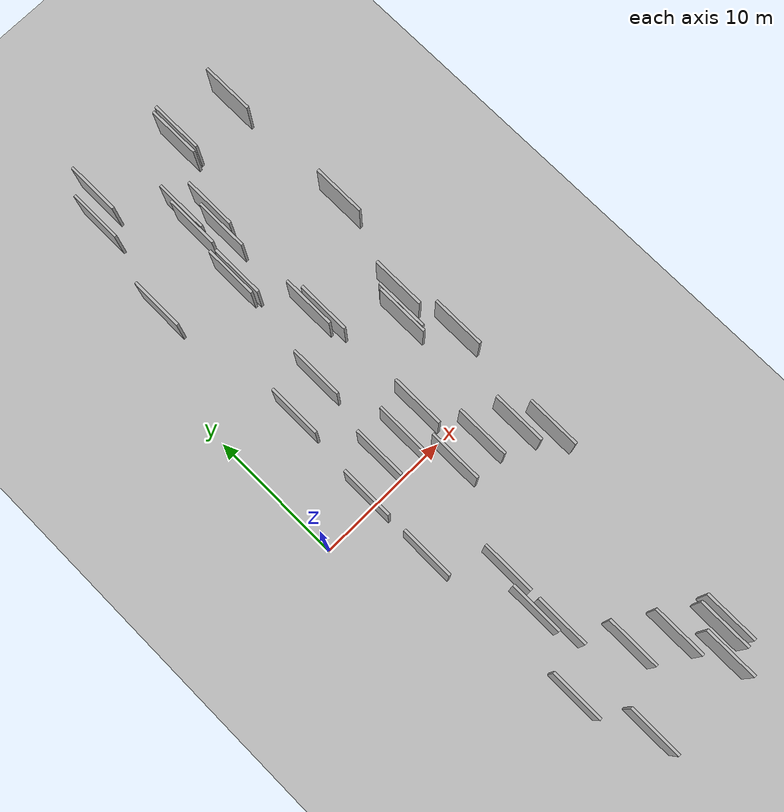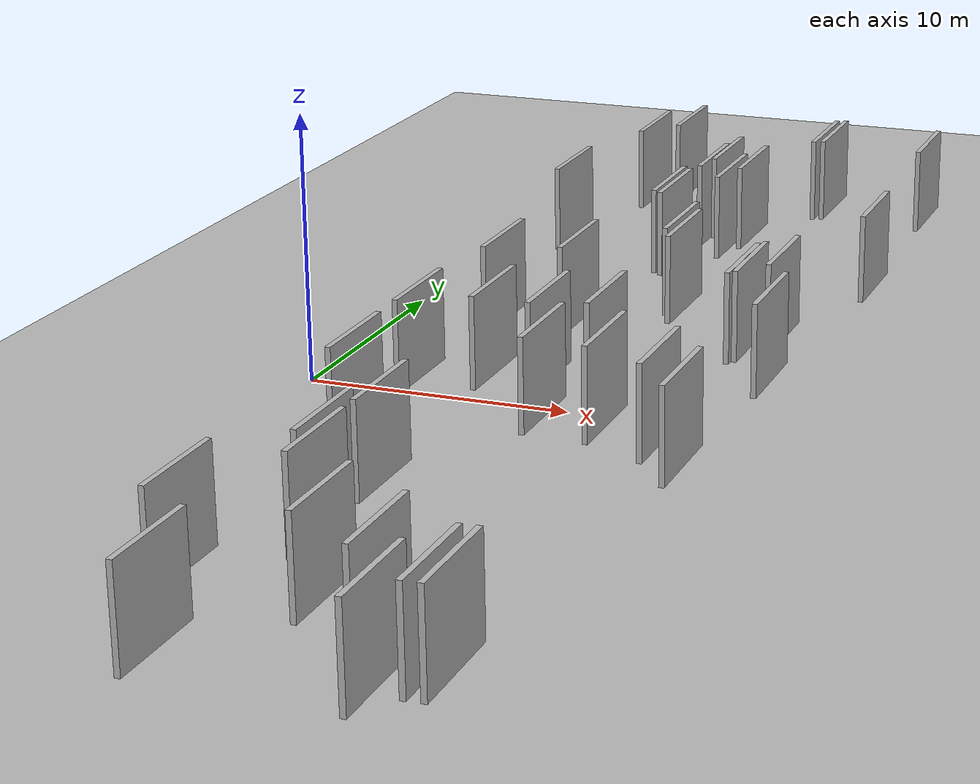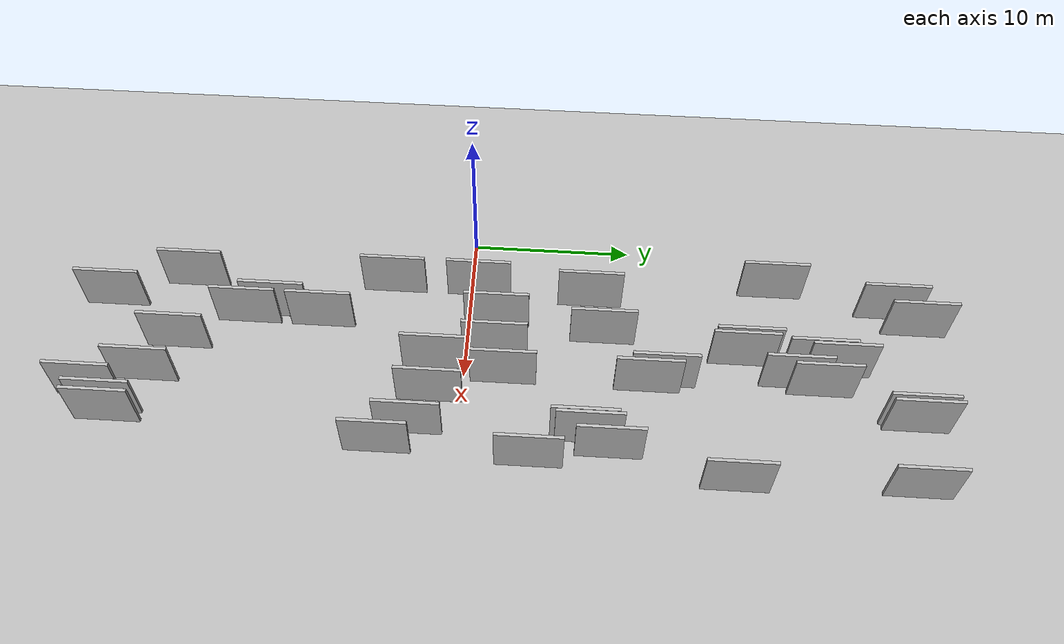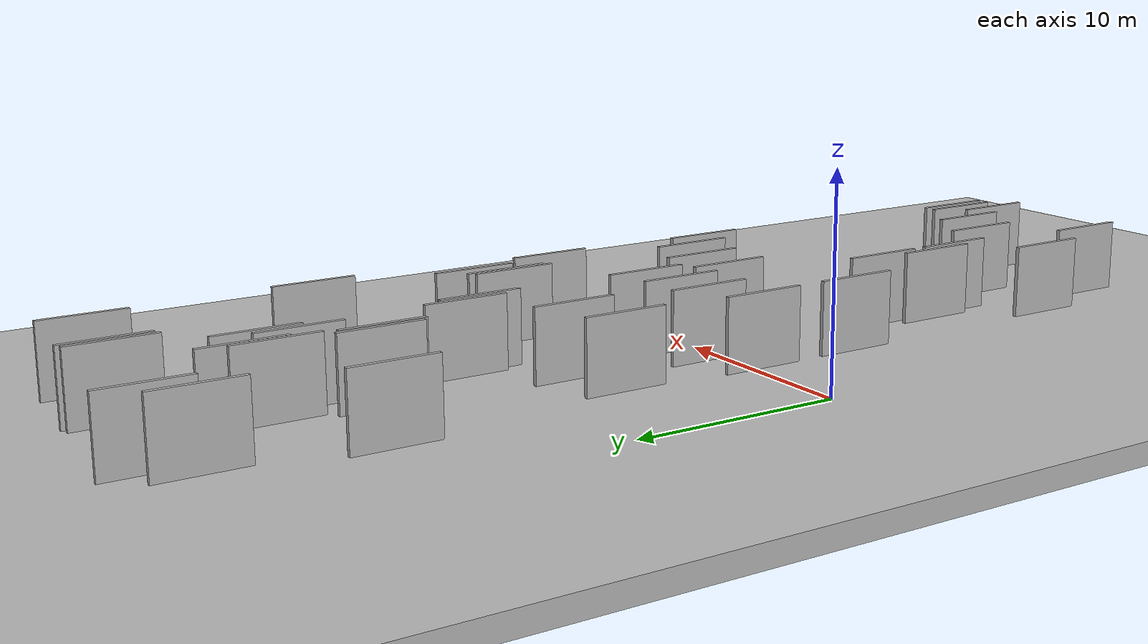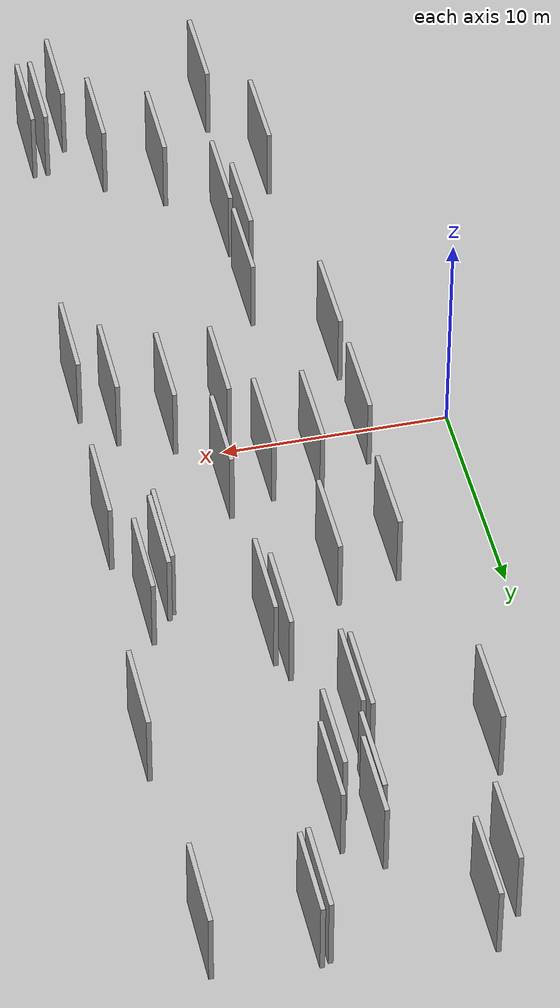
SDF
<?xml version="1.0" encoding="utf-8"?>

<sdf version="1.6">

   <world name="default">

      <gui fullscreen="0">

         <camera name="user_camera">

            <pose>-15 0 4.57585 0 0 0</pose>

            <view_controller>orbit</view_controller>

         </camera>

      </gui>

      <scene>

         <sky>

           <clouds>

             <speed>12</speed>

           </clouds>

         </sky>

         <ambient>0.4 0.4 0.4 1</ambient>

         <background>0.7 0.7 0.7 1</background>

         <shadows>1</shadows>

      </scene>

      <gravity>0 0 -9.8066</gravity>

      <magnetic_field>6e-06 2.3e-05 -4.2e-05</magnetic_field>

      <physics default="0" name="default_physics" type="ode">

         <ode>

            <solver>

               <type>quick</type>

               <iters>10</iters>

               <sor>1.0</sor>

               <use_dynamic_moi_rescaling>0</use_dynamic_moi_rescaling>

            </solver>

            <constraints>

               <cfm>0</cfm>

               <erp>0.2</erp>

               <contact_max_correcting_vel>100</contact_max_correcting_vel>

               <contact_surface_layer>0.001</contact_surface_layer>

            </constraints>

         </ode>

         <max_step_size>0.004</max_step_size>

         <real_time_factor>1</real_time_factor>

         <real_time_update_rate>250</real_time_update_rate>

      </physics>

      <light name="sun" type="directional">

         <cast_shadows>1</cast_shadows>

         <pose>0 0 10 0 0 0</pose>

         <diffuse>0.8 0.8 0.8 1</diffuse>

         <specular>0.2 0.2 0.2 1</specular>

         <attenuation>

            <range>1000</range>

            <constant>0.9</constant>

            <linear>0.01</linear>

            <quadratic>0.001</quadratic>

         </attenuation>

         <direction>-0.5 0.1 -0.9</direction>

      </light>

      <include>

         <name>ground_plane_1</name>

         <uri>model://HANNAS_ground_plane</uri>

         <pose>0 0 0  0 0 0</pose>

      </include>

      <include>

         <name>ground_plane_2</name>

         <uri>model://HANNAS_ground_plane</uri>

         <pose>100 0 0  0 0 0</pose>

      </include>

      <model name="HANNAS_wall_1">

         <static>1</static>

         <pose frame="">16.7061 26.6376 0.0 0.000000 0.000000 1.570796</pose>

         <link name="link">

            <pose frame="">0 0 2.00 0 0 0</pose>

            <collision name="collision">

               <geometry>

                  <box>

                     <size>4.00 0.2 4.00</size>

                  </box>

               </geometry>

               <max_contacts>10</max_contacts>

               <surface>

                  <contact>

                     <ode/>

                  </contact>

                  <bounce/>

                  <friction>

                     <torsional>

                        <ode/>

                     </torsional>

                     <ode/>

                  </friction>

               </surface>

            </collision>

            <visual name="visual">

               <cast_shadows>0</cast_shadows>

               <geometry>

                  <box>

                     <size>4.00 0.2 4.00</size>

                  </box>

               </geometry>

               <material>

                  <script>

                     <uri>model://HANNAS_wall/materials/scripts</uri>

                     <uri>model://HANNAS_wall/materials/textures</uri>

                     <name>vrc/HANNAS_wall</name>

                  </script>

               </material>

            </visual>

            <self_collide>0</self_collide>

            <enable_wind>0</enable_wind>

            <kinematic>0</kinematic>

         </link>

      </model>

      <model name="HANNAS_wall_2">

         <static>1</static>

         <pose frame="">7.0532 -9.0477 0.0 0.000000 0.000000 1.570796</pose>

         <link name="link">

            <pose frame="">0 0 2.00 0 0 0</pose>

            <collision name="collision">

               <geometry>

                  <box>

                     <size>4.00 0.2 4.00</size>

                  </box>

               </geometry>

               <max_contacts>10</max_contacts>

               <surface>

                  <contact>

                     <ode/>

                  </contact>

                  <bounce/>

                  <friction>

                     <torsional>

                        <ode/>

                     </torsional>

                     <ode/>

                  </friction>

               </surface>

            </collision>

            <visual name="visual">

               <cast_shadows>0</cast_shadows>

               <geometry>

                  <box>

                     <size>4.00 0.2 4.00</size>

                  </box>

               </geometry>

               <material>

                  <script>

                     <uri>model://HANNAS_wall/materials/scripts</uri>

                     <uri>model://HANNAS_wall/materials/textures</uri>

                     <name>vrc/HANNAS_wall</name>

                  </script>

               </material>

            </visual>

            <self_collide>0</self_collide>

            <enable_wind>0</enable_wind>

            <kinematic>0</kinematic>

         </link>

      </model>

      <model name="HANNAS_wall_3">

         <static>1</static>

         <pose frame="">16.9502 16.1823 0.0 0.000000 0.000000 1.570796</pose>

         <link name="link">

            <pose frame="">0 0 2.00 0 0 0</pose>

            <collision name="collision">

               <geometry>

                  <box>

                     <size>4.00 0.2 4.00</size>

                  </box>

               </geometry>

               <max_contacts>10</max_contacts>

               <surface>

                  <contact>

                     <ode/>

                  </contact>

                  <bounce/>

                  <friction>

                     <torsional>

                        <ode/>

                     </torsional>

                     <ode/>

                  </friction>

               </surface>

            </collision>

            <visual name="visual">

               <cast_shadows>0</cast_shadows>

               <geometry>

                  <box>

                     <size>4.00 0.2 4.00</size>

                  </box>

               </geometry>

               <material>

                  <script>

                     <uri>model://HANNAS_wall/materials/scripts</uri>

                     <uri>model://HANNAS_wall/materials/textures</uri>

                     <name>vrc/HANNAS_wall</name>

                  </script>

               </material>

            </visual>

            <self_collide>0</self_collide>

            <enable_wind>0</enable_wind>

            <kinematic>0</kinematic>

         </link>

      </model>

      <model name="HANNAS_wall_4">

         <static>1</static>

         <pose frame="">14.1289 7.4127 0.0 0.000000 0.000000 1.570796</pose>

         <link name="link">

            <pose frame="">0 0 2.00 0 0 0</pose>

            <collision name="collision">

               <geometry>

                  <box>

                     <size>4.00 0.2 4.00</size>

                  </box>

               </geometry>

               <max_contacts>10</max_contacts>

               <surface>

                  <contact>

                     <ode/>

                  </contact>

                  <bounce/>

                  <friction>

                     <torsional>

                        <ode/>

                     </torsional>

                     <ode/>

                  </friction>

               </surface>

            </collision>

            <visual name="visual">

               <cast_shadows>0</cast_shadows>

               <geometry>

                  <box>

                     <size>4.00 0.2 4.00</size>

                  </box>

               </geometry>

               <material>

                  <script>

                     <uri>model://HANNAS_wall/materials/scripts</uri>

                     <uri>model://HANNAS_wall/materials/textures</uri>

                     <name>vrc/HANNAS_wall</name>

                  </script>

               </material>

            </visual>

            <self_collide>0</self_collide>

            <enable_wind>0</enable_wind>

            <kinematic>0</kinematic>

         </link>

      </model>

      <model name="HANNAS_wall_5">

         <static>1</static>

         <pose frame="">14.3603 -2.9068 0.0 0.000000 0.000000 1.570796</pose>

         <link name="link">

            <pose frame="">0 0 2.00 0 0 0</pose>

            <collision name="collision">

               <geometry>

                  <box>

                     <size>4.00 0.2 4.00</size>

                  </box>

               </geometry>

               <max_contacts>10</max_contacts>

               <surface>

                  <contact>

                     <ode/>

                  </contact>

                  <bounce/>

                  <friction>

                     <torsional>

                        <ode/>

                     </torsional>

                     <ode/>

                  </friction>

               </surface>

            </collision>

            <visual name="visual">

               <cast_shadows>0</cast_shadows>

               <geometry>

                  <box>

                     <size>4.00 0.2 4.00</size>

                  </box>

               </geometry>

               <material>

                  <script>

                     <uri>model://HANNAS_wall/materials/scripts</uri>

                     <uri>model://HANNAS_wall/materials/textures</uri>

                     <name>vrc/HANNAS_wall</name>

                  </script>

               </material>

            </visual>

            <self_collide>0</self_collide>

            <enable_wind>0</enable_wind>

            <kinematic>0</kinematic>

         </link>

      </model>

      <model name="HANNAS_wall_6">

         <static>1</static>

         <pose frame="">14.6286 -20.9069 0.0 0.000000 0.000000 1.570796</pose>

         <link name="link">

            <pose frame="">0 0 2.00 0 0 0</pose>

            <collision name="collision">

               <geometry>

                  <box>

                     <size>4.00 0.2 4.00</size>

                  </box>

               </geometry>

               <max_contacts>10</max_contacts>

               <surface>

                  <contact>

                     <ode/>

                  </contact>

                  <bounce/>

                  <friction>

                     <torsional>

                        <ode/>

                     </torsional>

                     <ode/>

                  </friction>

               </surface>

            </collision>

            <visual name="visual">

               <cast_shadows>0</cast_shadows>

               <geometry>

                  <box>

                     <size>4.00 0.2 4.00</size>

                  </box>

               </geometry>

               <material>

                  <script>

                     <uri>model://HANNAS_wall/materials/scripts</uri>

                     <uri>model://HANNAS_wall/materials/textures</uri>

                     <name>vrc/HANNAS_wall</name>

                  </script>

               </material>

            </visual>

            <self_collide>0</self_collide>

            <enable_wind>0</enable_wind>

            <kinematic>0</kinematic>

         </link>

      </model>

      <model name="HANNAS_wall_7">

         <static>1</static>

         <pose frame="">10.1858 12.0922 0.0 0.000000 0.000000 1.570796</pose>

         <link name="link">

            <pose frame="">0 0 2.00 0 0 0</pose>

            <collision name="collision">

               <geometry>

                  <box>

                     <size>4.00 0.2 4.00</size>

                  </box>

               </geometry>

               <max_contacts>10</max_contacts>

               <surface>

                  <contact>

                     <ode/>

                  </contact>

                  <bounce/>

                  <friction>

                     <torsional>

                        <ode/>

                     </torsional>

                     <ode/>

                  </friction>

               </surface>

            </collision>

            <visual name="visual">

               <cast_shadows>0</cast_shadows>

               <geometry>

                  <box>

                     <size>4.00 0.2 4.00</size>

                  </box>

               </geometry>

               <material>

                  <script>

                     <uri>model://HANNAS_wall/materials/scripts</uri>

                     <uri>model://HANNAS_wall/materials/textures</uri>

                     <name>vrc/HANNAS_wall</name>

                  </script>

               </material>

            </visual>

            <self_collide>0</self_collide>

            <enable_wind>0</enable_wind>

            <kinematic>0</kinematic>

         </link>

      </model>

      <model name="HANNAS_wall_8">

         <static>1</static>

         <pose frame="">6.4740 1.7864 0.0 0.000000 0.000000 1.570796</pose>

         <link name="link">

            <pose frame="">0 0 2.00 0 0 0</pose>

            <collision name="collision">

               <geometry>

                  <box>

                     <size>4.00 0.2 4.00</size>

                  </box>

               </geometry>

               <max_contacts>10</max_contacts>

               <surface>

                  <contact>

                     <ode/>

                  </contact>

                  <bounce/>

                  <friction>

                     <torsional>

                        <ode/>

                     </torsional>

                     <ode/>

                  </friction>

               </surface>

            </collision>

            <visual name="visual">

               <cast_shadows>0</cast_shadows>

               <geometry>

                  <box>

                     <size>4.00 0.2 4.00</size>

                  </box>

               </geometry>

               <material>

                  <script>

                     <uri>model://HANNAS_wall/materials/scripts</uri>

                     <uri>model://HANNAS_wall/materials/textures</uri>

                     <name>vrc/HANNAS_wall</name>

                  </script>

               </material>

            </visual>

            <self_collide>0</self_collide>

            <enable_wind>0</enable_wind>

            <kinematic>0</kinematic>

         </link>

      </model>

      <model name="HANNAS_wall_9">

         <static>1</static>

         <pose frame="">8.3509 16.8986 0.0 0.000000 0.000000 1.570796</pose>

         <link name="link">

            <pose frame="">0 0 2.00 0 0 0</pose>

            <collision name="collision">

               <geometry>

                  <box>

                     <size>4.00 0.2 4.00</size>

                  </box>

               </geometry>

               <max_contacts>10</max_contacts>

               <surface>

                  <contact>

                     <ode/>

                  </contact>

                  <bounce/>

                  <friction>

                     <torsional>

                        <ode/>

                     </torsional>

                     <ode/>

                  </friction>

               </surface>

            </collision>

            <visual name="visual">

               <cast_shadows>0</cast_shadows>

               <geometry>

                  <box>

                     <size>4.00 0.2 4.00</size>

                  </box>

               </geometry>

               <material>

                  <script>

                     <uri>model://HANNAS_wall/materials/scripts</uri>

                     <uri>model://HANNAS_wall/materials/textures</uri>

                     <name>vrc/HANNAS_wall</name>

                  </script>

               </material>

            </visual>

            <self_collide>0</self_collide>

            <enable_wind>0</enable_wind>

            <kinematic>0</kinematic>

         </link>

      </model>

      <model name="HANNAS_wall_10">

         <static>1</static>

         <pose frame="">12.3921 27.0401 0.0 0.000000 0.000000 1.570796</pose>

         <link name="link">

            <pose frame="">0 0 2.00 0 0 0</pose>

            <collision name="collision">

               <geometry>

                  <box>

                     <size>4.00 0.2 4.00</size>

                  </box>

               </geometry>

               <max_contacts>10</max_contacts>

               <surface>

                  <contact>

                     <ode/>

                  </contact>

                  <bounce/>

                  <friction>

                     <torsional>

                        <ode/>

                     </torsional>

                     <ode/>

                  </friction>

               </surface>

            </collision>

            <visual name="visual">

               <cast_shadows>0</cast_shadows>

               <geometry>

                  <box>

                     <size>4.00 0.2 4.00</size>

                  </box>

               </geometry>

               <material>

                  <script>

                     <uri>model://HANNAS_wall/materials/scripts</uri>

                     <uri>model://HANNAS_wall/materials/textures</uri>

                     <name>vrc/HANNAS_wall</name>

                  </script>

               </material>

            </visual>

            <self_collide>0</self_collide>

            <enable_wind>0</enable_wind>

            <kinematic>0</kinematic>

         </link>

      </model>

      <model name="HANNAS_wall_11">

         <static>1</static>

         <pose frame="">16.1155 4.2713 0.0 0.000000 0.000000 1.570796</pose>

         <link name="link">

            <pose frame="">0 0 2.00 0 0 0</pose>

            <collision name="collision">

               <geometry>

                  <box>

                     <size>4.00 0.2 4.00</size>

                  </box>

               </geometry>

               <max_contacts>10</max_contacts>

               <surface>

                  <contact>

                     <ode/>

                  </contact>

                  <bounce/>

                  <friction>

                     <torsional>

                        <ode/>

                     </torsional>

                     <ode/>

                  </friction>

               </surface>

            </collision>

            <visual name="visual">

               <cast_shadows>0</cast_shadows>

               <geometry>

                  <box>

                     <size>4.00 0.2 4.00</size>

                  </box>

               </geometry>

               <material>

                  <script>

                     <uri>model://HANNAS_wall/materials/scripts</uri>

                     <uri>model://HANNAS_wall/materials/textures</uri>

                     <name>vrc/HANNAS_wall</name>

                  </script>

               </material>

            </visual>

            <self_collide>0</self_collide>

            <enable_wind>0</enable_wind>

            <kinematic>0</kinematic>

         </link>

      </model>

      <model name="HANNAS_wall_12">

         <static>1</static>

         <pose frame="">4.1226 -4.8258 0.0 0.000000 0.000000 1.570796</pose>

         <link name="link">

            <pose frame="">0 0 2.00 0 0 0</pose>

            <collision name="collision">

               <geometry>

                  <box>

                     <size>4.00 0.2 4.00</size>

                  </box>

               </geometry>

               <max_contacts>10</max_contacts>

               <surface>

                  <contact>

                     <ode/>

                  </contact>

                  <bounce/>

                  <friction>

                     <torsional>

                        <ode/>

                     </torsional>

                     <ode/>

                  </friction>

               </surface>

            </collision>

            <visual name="visual">

               <cast_shadows>0</cast_shadows>

               <geometry>

                  <box>

                     <size>4.00 0.2 4.00</size>

                  </box>

               </geometry>

               <material>

                  <script>

                     <uri>model://HANNAS_wall/materials/scripts</uri>

                     <uri>model://HANNAS_wall/materials/textures</uri>

                     <name>vrc/HANNAS_wall</name>

                  </script>

               </material>

            </visual>

            <self_collide>0</self_collide>

            <enable_wind>0</enable_wind>

            <kinematic>0</kinematic>

         </link>

      </model>

      <model name="HANNAS_wall_13">

         <static>1</static>

         <pose frame="">5.5318 27.7553 0.0 0.000000 0.000000 1.570796</pose>

         <link name="link">

            <pose frame="">0 0 2.00 0 0 0</pose>

            <collision name="collision">

               <geometry>

                  <box>

                     <size>4.00 0.2 4.00</size>

                  </box>

               </geometry>

               <max_contacts>10</max_contacts>

               <surface>

                  <contact>

                     <ode/>

                  </contact>

                  <bounce/>

                  <friction>

                     <torsional>

                        <ode/>

                     </torsional>

                     <ode/>

                  </friction>

               </surface>

            </collision>

            <visual name="visual">

               <cast_shadows>0</cast_shadows>

               <geometry>

                  <box>

                     <size>4.00 0.2 4.00</size>

                  </box>

               </geometry>

               <material>

                  <script>

                     <uri>model://HANNAS_wall/materials/scripts</uri>

                     <uri>model://HANNAS_wall/materials/textures</uri>

                     <name>vrc/HANNAS_wall</name>

                  </script>

               </material>

            </visual>

            <self_collide>0</self_collide>

            <enable_wind>0</enable_wind>

            <kinematic>0</kinematic>

         </link>

      </model>

      <model name="HANNAS_wall_14">

         <static>1</static>

         <pose frame="">10.2854 21.5758 0.0 0.000000 0.000000 1.570796</pose>

         <link name="link">

            <pose frame="">0 0 2.00 0 0 0</pose>

            <collision name="collision">

               <geometry>

                  <box>

                     <size>4.00 0.2 4.00</size>

                  </box>

               </geometry>

               <max_contacts>10</max_contacts>

               <surface>

                  <contact>

                     <ode/>

                  </contact>

                  <bounce/>

                  <friction>

                     <torsional>

                        <ode/>

                     </torsional>

                     <ode/>

                  </friction>

               </surface>

            </collision>

            <visual name="visual">

               <cast_shadows>0</cast_shadows>

               <geometry>

                  <box>

                     <size>4.00 0.2 4.00</size>

                  </box>

               </geometry>

               <material>

                  <script>

                     <uri>model://HANNAS_wall/materials/scripts</uri>

                     <uri>model://HANNAS_wall/materials/textures</uri>

                     <name>vrc/HANNAS_wall</name>

                  </script>

               </material>

            </visual>

            <self_collide>0</self_collide>

            <enable_wind>0</enable_wind>

            <kinematic>0</kinematic>

         </link>

      </model>

      <model name="HANNAS_wall_15">

         <static>1</static>

         <pose frame="">12.0755 -1.8898 0.0 0.000000 0.000000 1.570796</pose>

         <link name="link">

            <pose frame="">0 0 2.00 0 0 0</pose>

            <collision name="collision">

               <geometry>

                  <box>

                     <size>4.00 0.2 4.00</size>

                  </box>

               </geometry>

               <max_contacts>10</max_contacts>

               <surface>

                  <contact>

                     <ode/>

                  </contact>

                  <bounce/>

                  <friction>

                     <torsional>

                        <ode/>

                     </torsional>

                     <ode/>

                  </friction>

               </surface>

            </collision>

            <visual name="visual">

               <cast_shadows>0</cast_shadows>

               <geometry>

                  <box>

                     <size>4.00 0.2 4.00</size>

                  </box>

               </geometry>

               <material>

                  <script>

                     <uri>model://HANNAS_wall/materials/scripts</uri>

                     <uri>model://HANNAS_wall/materials/textures</uri>

                     <name>vrc/HANNAS_wall</name>

                  </script>

               </material>

            </visual>

            <self_collide>0</self_collide>

            <enable_wind>0</enable_wind>

            <kinematic>0</kinematic>

         </link>

      </model>

      <model name="HANNAS_wall_16">

         <static>1</static>

         <pose frame="">4.3339 26.1980 0.0 0.000000 0.000000 1.570796</pose>

         <link name="link">

            <pose frame="">0 0 2.00 0 0 0</pose>

            <collision name="collision">

               <geometry>

                  <box>

                     <size>4.00 0.2 4.00</size>

                  </box>

               </geometry>

               <max_contacts>10</max_contacts>

               <surface>

                  <contact>

                     <ode/>

                  </contact>

                  <bounce/>

                  <friction>

                     <torsional>

                        <ode/>

                     </torsional>

                     <ode/>

                  </friction>

               </surface>

            </collision>

            <visual name="visual">

               <cast_shadows>0</cast_shadows>

               <geometry>

                  <box>

                     <size>4.00 0.2 4.00</size>

                  </box>

               </geometry>

               <material>

                  <script>

                     <uri>model://HANNAS_wall/materials/scripts</uri>

                     <uri>model://HANNAS_wall/materials/textures</uri>

                     <name>vrc/HANNAS_wall</name>

                  </script>

               </material>

            </visual>

            <self_collide>0</self_collide>

            <enable_wind>0</enable_wind>

            <kinematic>0</kinematic>

         </link>

      </model>

      <model name="HANNAS_wall_17">

         <static>1</static>

         <pose frame="">11.6816 -19.2638 0.0 0.000000 0.000000 1.570796</pose>

         <link name="link">

            <pose frame="">0 0 2.00 0 0 0</pose>

            <collision name="collision">

               <geometry>

                  <box>

                     <size>4.00 0.2 4.00</size>

                  </box>

               </geometry>

               <max_contacts>10</max_contacts>

               <surface>

                  <contact>

                     <ode/>

                  </contact>

                  <bounce/>

                  <friction>

                     <torsional>

                        <ode/>

                     </torsional>

                     <ode/>

                  </friction>

               </surface>

            </collision>

            <visual name="visual">

               <cast_shadows>0</cast_shadows>

               <geometry>

                  <box>

                     <size>4.00 0.2 4.00</size>

                  </box>

               </geometry>

               <material>

                  <script>

                     <uri>model://HANNAS_wall/materials/scripts</uri>

                     <uri>model://HANNAS_wall/materials/textures</uri>

                     <name>vrc/HANNAS_wall</name>

                  </script>

               </material>

            </visual>

            <self_collide>0</self_collide>

            <enable_wind>0</enable_wind>

            <kinematic>0</kinematic>

         </link>

      </model>

      <model name="HANNAS_wall_18">

         <static>1</static>

         <pose frame="">8.5771 21.4203 0.0 0.000000 0.000000 1.570796</pose>

         <link name="link">

            <pose frame="">0 0 2.00 0 0 0</pose>

            <collision name="collision">

               <geometry>

                  <box>

                     <size>4.00 0.2 4.00</size>

                  </box>

               </geometry>

               <max_contacts>10</max_contacts>

               <surface>

                  <contact>

                     <ode/>

                  </contact>

                  <bounce/>

                  <friction>

                     <torsional>

                        <ode/>

                     </torsional>

                     <ode/>

                  </friction>

               </surface>

            </collision>

            <visual name="visual">

               <cast_shadows>0</cast_shadows>

               <geometry>

                  <box>

                     <size>4.00 0.2 4.00</size>

                  </box>

               </geometry>

               <material>

                  <script>

                     <uri>model://HANNAS_wall/materials/scripts</uri>

                     <uri>model://HANNAS_wall/materials/textures</uri>

                     <name>vrc/HANNAS_wall</name>

                  </script>

               </material>

            </visual>

            <self_collide>0</self_collide>

            <enable_wind>0</enable_wind>

            <kinematic>0</kinematic>

         </link>

      </model>

      <model name="HANNAS_wall_19">

         <static>1</static>

         <pose frame="">10.5462 2.4459 0.0 0.000000 0.000000 1.570796</pose>

         <link name="link">

            <pose frame="">0 0 2.00 0 0 0</pose>

            <collision name="collision">

               <geometry>

                  <box>

                     <size>4.00 0.2 4.00</size>

                  </box>

               </geometry>

               <max_contacts>10</max_contacts>

               <surface>

                  <contact>

                     <ode/>

                  </contact>

                  <bounce/>

                  <friction>

                     <torsional>

                        <ode/>

                     </torsional>

                     <ode/>

                  </friction>

               </surface>

            </collision>

            <visual name="visual">

               <cast_shadows>0</cast_shadows>

               <geometry>

                  <box>

                     <size>4.00 0.2 4.00</size>

                  </box>

               </geometry>

               <material>

                  <script>

                     <uri>model://HANNAS_wall/materials/scripts</uri>

                     <uri>model://HANNAS_wall/materials/textures</uri>

                     <name>vrc/HANNAS_wall</name>

                  </script>

               </material>

            </visual>

            <self_collide>0</self_collide>

            <enable_wind>0</enable_wind>

            <kinematic>0</kinematic>

         </link>

      </model>

      <model name="HANNAS_wall_20">

         <static>1</static>

         <pose frame="">9.1943 -17.7103 0.0 0.000000 0.000000 1.570796</pose>

         <link name="link">

            <pose frame="">0 0 2.00 0 0 0</pose>

            <collision name="collision">

               <geometry>

                  <box>

                     <size>4.00 0.2 4.00</size>

                  </box>

               </geometry>

               <max_contacts>10</max_contacts>

               <surface>

                  <contact>

                     <ode/>

                  </contact>

                  <bounce/>

                  <friction>

                     <torsional>

                        <ode/>

                     </torsional>

                     <ode/>

                  </friction>

               </surface>

            </collision>

            <visual name="visual">

               <cast_shadows>0</cast_shadows>

               <geometry>

                  <box>

                     <size>4.00 0.2 4.00</size>

                  </box>

               </geometry>

               <material>

                  <script>

                     <uri>model://HANNAS_wall/materials/scripts</uri>

                     <uri>model://HANNAS_wall/materials/textures</uri>

                     <name>vrc/HANNAS_wall</name>

                  </script>

               </material>

            </visual>

            <self_collide>0</self_collide>

            <enable_wind>0</enable_wind>

            <kinematic>0</kinematic>

         </link>

      </model>

      <model name="HANNAS_wall_21">

         <static>1</static>

         <pose frame="">6.4892 -12.0338 0.0 0.000000 0.000000 1.570796</pose>

         <link name="link">

            <pose frame="">0 0 2.00 0 0 0</pose>

            <collision name="collision">

               <geometry>

                  <box>

                     <size>4.00 0.2 4.00</size>

                  </box>

               </geometry>

               <max_contacts>10</max_contacts>

               <surface>

                  <contact>

                     <ode/>

                  </contact>

                  <bounce/>

                  <friction>

                     <torsional>

                        <ode/>

                     </torsional>

                     <ode/>

                  </friction>

               </surface>

            </collision>

            <visual name="visual">

               <cast_shadows>0</cast_shadows>

               <geometry>

                  <box>

                     <size>4.00 0.2 4.00</size>

                  </box>

               </geometry>

               <material>

                  <script>

                     <uri>model://HANNAS_wall/materials/scripts</uri>

                     <uri>model://HANNAS_wall/materials/textures</uri>

                     <name>vrc/HANNAS_wall</name>

                  </script>

               </material>

            </visual>

            <self_collide>0</self_collide>

            <enable_wind>0</enable_wind>

            <kinematic>0</kinematic>

         </link>

      </model>

      <model name="HANNAS_wall_22">

         <static>1</static>

         <pose frame="">8.8120 22.7181 0.0 0.000000 0.000000 1.570796</pose>

         <link name="link">

            <pose frame="">0 0 2.00 0 0 0</pose>

            <collision name="collision">

               <geometry>

                  <box>

                     <size>4.00 0.2 4.00</size>

                  </box>

               </geometry>

               <max_contacts>10</max_contacts>

               <surface>

                  <contact>

                     <ode/>

                  </contact>

                  <bounce/>

                  <friction>

                     <torsional>

                        <ode/>

                     </torsional>

                     <ode/>

                  </friction>

               </surface>

            </collision>

            <visual name="visual">

               <cast_shadows>0</cast_shadows>

               <geometry>

                  <box>

                     <size>4.00 0.2 4.00</size>

                  </box>

               </geometry>

               <material>

                  <script>

                     <uri>model://HANNAS_wall/materials/scripts</uri>

                     <uri>model://HANNAS_wall/materials/textures</uri>

                     <name>vrc/HANNAS_wall</name>

                  </script>

               </material>

            </visual>

            <self_collide>0</self_collide>

            <enable_wind>0</enable_wind>

            <kinematic>0</kinematic>

         </link>

      </model>

      <model name="HANNAS_wall_23">

         <static>1</static>

         <pose frame="">7.2720 8.3871 0.0 0.000000 0.000000 1.570796</pose>

         <link name="link">

            <pose frame="">0 0 2.00 0 0 0</pose>

            <collision name="collision">

               <geometry>

                  <box>

                     <size>4.00 0.2 4.00</size>

                  </box>

               </geometry>

               <max_contacts>10</max_contacts>

               <surface>

                  <contact>

                     <ode/>

                  </contact>

                  <bounce/>

                  <friction>

                     <torsional>

                        <ode/>

                     </torsional>

                     <ode/>

                  </friction>

               </surface>

            </collision>

            <visual name="visual">

               <cast_shadows>0</cast_shadows>

               <geometry>

                  <box>

                     <size>4.00 0.2 4.00</size>

                  </box>

               </geometry>

               <material>

                  <script>

                     <uri>model://HANNAS_wall/materials/scripts</uri>

                     <uri>model://HANNAS_wall/materials/textures</uri>

                     <name>vrc/HANNAS_wall</name>

                  </script>

               </material>

            </visual>

            <self_collide>0</self_collide>

            <enable_wind>0</enable_wind>

            <kinematic>0</kinematic>

         </link>

      </model>

      <model name="HANNAS_wall_24">

         <static>1</static>

         <pose frame="">7.0429 -13.7059 0.0 0.000000 0.000000 1.570796</pose>

         <link name="link">

            <pose frame="">0 0 2.00 0 0 0</pose>

            <collision name="collision">

               <geometry>

                  <box>

                     <size>4.00 0.2 4.00</size>

                  </box>

               </geometry>

               <max_contacts>10</max_contacts>

               <surface>

                  <contact>

                     <ode/>

                  </contact>

                  <bounce/>

                  <friction>

                     <torsional>

                        <ode/>

                     </torsional>

                     <ode/>

                  </friction>

               </surface>

            </collision>

            <visual name="visual">

               <cast_shadows>0</cast_shadows>

               <geometry>

                  <box>

                     <size>4.00 0.2 4.00</size>

                  </box>

               </geometry>

               <material>

                  <script>

                     <uri>model://HANNAS_wall/materials/scripts</uri>

                     <uri>model://HANNAS_wall/materials/textures</uri>

                     <name>vrc/HANNAS_wall</name>

                  </script>

               </material>

            </visual>

            <self_collide>0</self_collide>

            <enable_wind>0</enable_wind>

            <kinematic>0</kinematic>

         </link>

      </model>

      <model name="HANNAS_wall_25">

         <static>1</static>

         <pose frame="">8.0146 17.1314 0.0 0.000000 0.000000 1.570796</pose>

         <link name="link">

            <pose frame="">0 0 2.00 0 0 0</pose>

            <collision name="collision">

               <geometry>

                  <box>

                     <size>4.00 0.2 4.00</size>

                  </box>

               </geometry>

               <max_contacts>10</max_contacts>

               <surface>

                  <contact>

                     <ode/>

                  </contact>

                  <bounce/>

                  <friction>

                     <torsional>

                        <ode/>

                     </torsional>

                     <ode/>

                  </friction>

               </surface>

            </collision>

            <visual name="visual">

               <cast_shadows>0</cast_shadows>

               <geometry>

                  <box>

                     <size>4.00 0.2 4.00</size>

                  </box>

               </geometry>

               <material>

                  <script>

                     <uri>model://HANNAS_wall/materials/scripts</uri>

                     <uri>model://HANNAS_wall/materials/textures</uri>

                     <name>vrc/HANNAS_wall</name>

                  </script>

               </material>

            </visual>

            <self_collide>0</self_collide>

            <enable_wind>0</enable_wind>

            <kinematic>0</kinematic>

         </link>

      </model>

      <model name="HANNAS_wall_26">

         <static>1</static>

         <pose frame="">6.2360 -22.2910 0.0 0.000000 0.000000 1.570796</pose>

         <link name="link">

            <pose frame="">0 0 2.00 0 0 0</pose>

            <collision name="collision">

               <geometry>

                  <box>

                     <size>4.00 0.2 4.00</size>

                  </box>

               </geometry>

               <max_contacts>10</max_contacts>

               <surface>

                  <contact>

                     <ode/>

                  </contact>

                  <bounce/>

                  <friction>

                     <torsional>

                        <ode/>

                     </torsional>

                     <ode/>

                  </friction>

               </surface>

            </collision>

            <visual name="visual">

               <cast_shadows>0</cast_shadows>

               <geometry>

                  <box>

                     <size>4.00 0.2 4.00</size>

                  </box>

               </geometry>

               <material>

                  <script>

                     <uri>model://HANNAS_wall/materials/scripts</uri>

                     <uri>model://HANNAS_wall/materials/textures</uri>

                     <name>vrc/HANNAS_wall</name>

                  </script>

               </material>

            </visual>

            <self_collide>0</self_collide>

            <enable_wind>0</enable_wind>

            <kinematic>0</kinematic>

         </link>

      </model>

      <model name="HANNAS_wall_27">

         <static>1</static>

         <pose frame="">12.0250 26.8878 0.0 0.000000 0.000000 1.570796</pose>

         <link name="link">

            <pose frame="">0 0 2.00 0 0 0</pose>

            <collision name="collision">

               <geometry>

                  <box>

                     <size>4.00 0.2 4.00</size>

                  </box>

               </geometry>

               <max_contacts>10</max_contacts>

               <surface>

                  <contact>

                     <ode/>

                  </contact>

                  <bounce/>

                  <friction>

                     <torsional>

                        <ode/>

                     </torsional>

                     <ode/>

                  </friction>

               </surface>

            </collision>

            <visual name="visual">

               <cast_shadows>0</cast_shadows>

               <geometry>

                  <box>

                     <size>4.00 0.2 4.00</size>

                  </box>

               </geometry>

               <material>

                  <script>

                     <uri>model://HANNAS_wall/materials/scripts</uri>

                     <uri>model://HANNAS_wall/materials/textures</uri>

                     <name>vrc/HANNAS_wall</name>

                  </script>

               </material>

            </visual>

            <self_collide>0</self_collide>

            <enable_wind>0</enable_wind>

            <kinematic>0</kinematic>

         </link>

      </model>

      <model name="HANNAS_wall_28">

         <static>1</static>

         <pose frame="">4.4241 -17.4795 0.0 0.000000 0.000000 1.570796</pose>

         <link name="link">

            <pose frame="">0 0 2.00 0 0 0</pose>

            <collision name="collision">

               <geometry>

                  <box>

                     <size>4.00 0.2 4.00</size>

                  </box>

               </geometry>

               <max_contacts>10</max_contacts>

               <surface>

                  <contact>

                     <ode/>

                  </contact>

                  <bounce/>

                  <friction>

                     <torsional>

                        <ode/>

                     </torsional>

                     <ode/>

                  </friction>

               </surface>

            </collision>

            <visual name="visual">

               <cast_shadows>0</cast_shadows>

               <geometry>

                  <box>

                     <size>4.00 0.2 4.00</size>

                  </box>

               </geometry>

               <material>

                  <script>

                     <uri>model://HANNAS_wall/materials/scripts</uri>

                     <uri>model://HANNAS_wall/materials/textures</uri>

                     <name>vrc/HANNAS_wall</name>

                  </script>

               </material>

            </visual>

            <self_collide>0</self_collide>

            <enable_wind>0</enable_wind>

            <kinematic>0</kinematic>

         </link>

      </model>

      <model name="HANNAS_wall_29">

         <static>1</static>

         <pose frame="">3.1314 18.9450 0.0 0.000000 0.000000 1.570796</pose>

         <link name="link">

            <pose frame="">0 0 2.00 0 0 0</pose>

            <collision name="collision">

               <geometry>

                  <box>

                     <size>4.00 0.2 4.00</size>

                  </box>

               </geometry>

               <max_contacts>10</max_contacts>

               <surface>

                  <contact>

                     <ode/>

                  </contact>

                  <bounce/>

                  <friction>

                     <torsional>

                        <ode/>

                     </torsional>

                     <ode/>

                  </friction>

               </surface>

            </collision>

            <visual name="visual">

               <cast_shadows>0</cast_shadows>

               <geometry>

                  <box>

                     <size>4.00 0.2 4.00</size>

                  </box>

               </geometry>

               <material>

                  <script>

                     <uri>model://HANNAS_wall/materials/scripts</uri>

                     <uri>model://HANNAS_wall/materials/textures</uri>

                     <name>vrc/HANNAS_wall</name>

                  </script>

               </material>

            </visual>

            <self_collide>0</self_collide>

            <enable_wind>0</enable_wind>

            <kinematic>0</kinematic>

         </link>

      </model>

      <model name="HANNAS_wall_30">

         <static>1</static>

         <pose frame="">9.7388 -1.7623 0.0 0.000000 0.000000 1.570796</pose>

         <link name="link">

            <pose frame="">0 0 2.00 0 0 0</pose>

            <collision name="collision">

               <geometry>

                  <box>

                     <size>4.00 0.2 4.00</size>

                  </box>

               </geometry>

               <max_contacts>10</max_contacts>

               <surface>

                  <contact>

                     <ode/>

                  </contact>

                  <bounce/>

                  <friction>

                     <torsional>

                        <ode/>

                     </torsional>

                     <ode/>

                  </friction>

               </surface>

            </collision>

            <visual name="visual">

               <cast_shadows>0</cast_shadows>

               <geometry>

                  <box>

                     <size>4.00 0.2 4.00</size>

                  </box>

               </geometry>

               <material>

                  <script>

                     <uri>model://HANNAS_wall/materials/scripts</uri>

                     <uri>model://HANNAS_wall/materials/textures</uri>

                     <name>vrc/HANNAS_wall</name>

                  </script>

               </material>

            </visual>

            <self_collide>0</self_collide>

            <enable_wind>0</enable_wind>

            <kinematic>0</kinematic>

         </link>

      </model>

      <model name="HANNAS_wall_31">

         <static>1</static>

         <pose frame="">15.7197 -4.6397 0.0 0.000000 0.000000 1.570796</pose>

         <link name="link">

            <pose frame="">0 0 2.00 0 0 0</pose>

            <collision name="collision">

               <geometry>

                  <box>

                     <size>4.00 0.2 4.00</size>

                  </box>

               </geometry>

               <max_contacts>10</max_contacts>

               <surface>

                  <contact>

                     <ode/>

                  </contact>

                  <bounce/>

                  <friction>

                     <torsional>

                        <ode/>

                     </torsional>

                     <ode/>

                  </friction>

               </surface>

            </collision>

            <visual name="visual">

               <cast_shadows>0</cast_shadows>

               <geometry>

                  <box>

                     <size>4.00 0.2 4.00</size>

                  </box>

               </geometry>

               <material>

                  <script>

                     <uri>model://HANNAS_wall/materials/scripts</uri>

                     <uri>model://HANNAS_wall/materials/textures</uri>

                     <name>vrc/HANNAS_wall</name>

                  </script>

               </material>

            </visual>

            <self_collide>0</self_collide>

            <enable_wind>0</enable_wind>

            <kinematic>0</kinematic>

         </link>

      </model>

      <model name="HANNAS_wall_32">

         <static>1</static>

         <pose frame="">10.6179 11.1445 0.0 0.000000 0.000000 1.570796</pose>

         <link name="link">

            <pose frame="">0 0 2.00 0 0 0</pose>

            <collision name="collision">

               <geometry>

                  <box>

                     <size>4.00 0.2 4.00</size>

                  </box>

               </geometry>

               <max_contacts>10</max_contacts>

               <surface>

                  <contact>

                     <ode/>

                  </contact>

                  <bounce/>

                  <friction>

                     <torsional>

                        <ode/>

                     </torsional>

                     <ode/>

                  </friction>

               </surface>

            </collision>

            <visual name="visual">

               <cast_shadows>0</cast_shadows>

               <geometry>

                  <box>

                     <size>4.00 0.2 4.00</size>

                  </box>

               </geometry>

               <material>

                  <script>

                     <uri>model://HANNAS_wall/materials/scripts</uri>

                     <uri>model://HANNAS_wall/materials/textures</uri>

                     <name>vrc/HANNAS_wall</name>

                  </script>

               </material>

            </visual>

            <self_collide>0</self_collide>

            <enable_wind>0</enable_wind>

            <kinematic>0</kinematic>

         </link>

      </model>

      <model name="HANNAS_wall_33">

         <static>1</static>

         <pose frame="">4.1067 0.5273 0.0 0.000000 0.000000 1.570796</pose>

         <link name="link">

            <pose frame="">0 0 2.00 0 0 0</pose>

            <collision name="collision">

               <geometry>

                  <box>

                     <size>4.00 0.2 4.00</size>

                  </box>

               </geometry>

               <max_contacts>10</max_contacts>

               <surface>

                  <contact>

                     <ode/>

                  </contact>

                  <bounce/>

                  <friction>

                     <torsional>

                        <ode/>

                     </torsional>

                     <ode/>

                  </friction>

               </surface>

            </collision>

            <visual name="visual">

               <cast_shadows>0</cast_shadows>

               <geometry>

                  <box>

                     <size>4.00 0.2 4.00</size>

                  </box>

               </geometry>

               <material>

                  <script>

                     <uri>model://HANNAS_wall/materials/scripts</uri>

                     <uri>model://HANNAS_wall/materials/textures</uri>

                     <name>vrc/HANNAS_wall</name>

                  </script>

               </material>

            </visual>

            <self_collide>0</self_collide>

            <enable_wind>0</enable_wind>

            <kinematic>0</kinematic>

         </link>

      </model>

      <model name="HANNAS_wall_34">

         <static>1</static>

         <pose frame="">9.8166 19.9293 0.0 0.000000 0.000000 1.570796</pose>

         <link name="link">

            <pose frame="">0 0 2.00 0 0 0</pose>

            <collision name="collision">

               <geometry>

                  <box>

                     <size>4.00 0.2 4.00</size>

                  </box>

               </geometry>

               <max_contacts>10</max_contacts>

               <surface>

                  <contact>

                     <ode/>

                  </contact>

                  <bounce/>

                  <friction>

                     <torsional>

                        <ode/>

                     </torsional>

                     <ode/>

                  </friction>

               </surface>

            </collision>

            <visual name="visual">

               <cast_shadows>0</cast_shadows>

               <geometry>

                  <box>

                     <size>4.00 0.2 4.00</size>

                  </box>

               </geometry>

               <material>

                  <script>

                     <uri>model://HANNAS_wall/materials/scripts</uri>

                     <uri>model://HANNAS_wall/materials/textures</uri>

                     <name>vrc/HANNAS_wall</name>

                  </script>

               </material>

            </visual>

            <self_collide>0</self_collide>

            <enable_wind>0</enable_wind>

            <kinematic>0</kinematic>

         </link>

      </model>

      <model name="HANNAS_wall_35">

         <static>1</static>

         <pose frame="">8.5864 1.8120 0.0 0.000000 0.000000 1.570796</pose>

         <link name="link">

            <pose frame="">0 0 2.00 0 0 0</pose>

            <collision name="collision">

               <geometry>

                  <box>

                     <size>4.00 0.2 4.00</size>

                  </box>

               </geometry>

               <max_contacts>10</max_contacts>

               <surface>

                  <contact>

                     <ode/>

                  </contact>

                  <bounce/>

                  <friction>

                     <torsional>

                        <ode/>

                     </torsional>

                     <ode/>

                  </friction>

               </surface>

            </collision>

            <visual name="visual">

               <cast_shadows>0</cast_shadows>

               <geometry>

                  <box>

                     <size>4.00 0.2 4.00</size>

                  </box>

               </geometry>

               <material>

                  <script>

                     <uri>model://HANNAS_wall/materials/scripts</uri>

                     <uri>model://HANNAS_wall/materials/textures</uri>

                     <name>vrc/HANNAS_wall</name>

                  </script>

               </material>

            </visual>

            <self_collide>0</self_collide>

            <enable_wind>0</enable_wind>

            <kinematic>0</kinematic>

         </link>

      </model>

      <model name="HANNAS_wall_36">

         <static>1</static>

         <pose frame="">15.2530 8.9062 0.0 0.000000 0.000000 1.570796</pose>

         <link name="link">

            <pose frame="">0 0 2.00 0 0 0</pose>

            <collision name="collision">

               <geometry>

                  <box>

                     <size>4.00 0.2 4.00</size>

                  </box>

               </geometry>

               <max_contacts>10</max_contacts>

               <surface>

                  <contact>

                     <ode/>

                  </contact>

                  <bounce/>

                  <friction>

                     <torsional>

                        <ode/>

                     </torsional>

                     <ode/>

                  </friction>

               </surface>

            </collision>

            <visual name="visual">

               <cast_shadows>0</cast_shadows>

               <geometry>

                  <box>

                     <size>4.00 0.2 4.00</size>

                  </box>

               </geometry>

               <material>

                  <script>

                     <uri>model://HANNAS_wall/materials/scripts</uri>

                     <uri>model://HANNAS_wall/materials/textures</uri>

                     <name>vrc/HANNAS_wall</name>

                  </script>

               </material>

            </visual>

            <self_collide>0</self_collide>

            <enable_wind>0</enable_wind>

            <kinematic>0</kinematic>

         </link>

      </model>

      <model name="HANNAS_wall_37">

         <static>1</static>

         <pose frame="">14.0268 -20.9426 0.0 0.000000 0.000000 1.570796</pose>

         <link name="link">

            <pose frame="">0 0 2.00 0 0 0</pose>

            <collision name="collision">

               <geometry>

                  <box>

                     <size>4.00 0.2 4.00</size>

                  </box>

               </geometry>

               <max_contacts>10</max_contacts>

               <surface>

                  <contact>

                     <ode/>

                  </contact>

                  <bounce/>

                  <friction>

                     <torsional>

                        <ode/>

                     </torsional>

                     <ode/>

                  </friction>

               </surface>

            </collision>

            <visual name="visual">

               <cast_shadows>0</cast_shadows>

               <geometry>

                  <box>

                     <size>4.00 0.2 4.00</size>

                  </box>

               </geometry>

               <material>

                  <script>

                     <uri>model://HANNAS_wall/materials/scripts</uri>

                     <uri>model://HANNAS_wall/materials/textures</uri>

                     <name>vrc/HANNAS_wall</name>

                  </script>

               </material>

            </visual>

            <self_collide>0</self_collide>

            <enable_wind>0</enable_wind>

            <kinematic>0</kinematic>

         </link>

      </model>

      <model name="HANNAS_wall_38">

         <static>1</static>

         <pose frame="">4.5272 7.5360 0.0 0.000000 0.000000 1.570796</pose>

         <link name="link">

            <pose frame="">0 0 2.00 0 0 0</pose>

            <collision name="collision">

               <geometry>

                  <box>

                     <size>4.00 0.2 4.00</size>

                  </box>

               </geometry>

               <max_contacts>10</max_contacts>

               <surface>

                  <contact>

                     <ode/>

                  </contact>

                  <bounce/>

                  <friction>

                     <torsional>

                        <ode/>

                     </torsional>

                     <ode/>

                  </friction>

               </surface>

            </collision>

            <visual name="visual">

               <cast_shadows>0</cast_shadows>

               <geometry>

                  <box>

                     <size>4.00 0.2 4.00</size>

                  </box>

               </geometry>

               <material>

                  <script>

                     <uri>model://HANNAS_wall/materials/scripts</uri>

                     <uri>model://HANNAS_wall/materials/textures</uri>

                     <name>vrc/HANNAS_wall</name>

                  </script>

               </material>

            </visual>

            <self_collide>0</self_collide>

            <enable_wind>0</enable_wind>

            <kinematic>0</kinematic>

         </link>

      </model>

      <model name="HANNAS_wall_39">

         <static>1</static>

         <pose frame="">12.9769 -22.3763 0.0 0.000000 0.000000 1.570796</pose>

         <link name="link">

            <pose frame="">0 0 2.00 0 0 0</pose>

            <collision name="collision">

               <geometry>

                  <box>

                     <size>4.00 0.2 4.00</size>

                  </box>

               </geometry>

               <max_contacts>10</max_contacts>

               <surface>

                  <contact>

                     <ode/>

                  </contact>

                  <bounce/>

                  <friction>

                     <torsional>

                        <ode/>

                     </torsional>

                     <ode/>

                  </friction>

               </surface>

            </collision>

            <visual name="visual">

               <cast_shadows>0</cast_shadows>

               <geometry>

                  <box>

                     <size>4.00 0.2 4.00</size>

                  </box>

               </geometry>

               <material>

                  <script>

                     <uri>model://HANNAS_wall/materials/scripts</uri>

                     <uri>model://HANNAS_wall/materials/textures</uri>

                     <name>vrc/HANNAS_wall</name>

                  </script>

               </material>

            </visual>

            <self_collide>0</self_collide>

            <enable_wind>0</enable_wind>

            <kinematic>0</kinematic>

         </link>

      </model>

      <model name="HANNAS_wall_40">

         <static>1</static>

         <pose frame="">14.3393 7.7173 0.0 0.000000 0.000000 1.570796</pose>

         <link name="link">

            <pose frame="">0 0 2.00 0 0 0</pose>

            <collision name="collision">

               <geometry>

                  <box>

                     <size>4.00 0.2 4.00</size>

                  </box>

               </geometry>

               <max_contacts>10</max_contacts>

               <surface>

                  <contact>

                     <ode/>

                  </contact>

                  <bounce/>

                  <friction>

                     <torsional>

                        <ode/>

                     </torsional>

                     <ode/>

                  </friction>

               </surface>

            </collision>

            <visual name="visual">

               <cast_shadows>0</cast_shadows>

               <geometry>

                  <box>

                     <size>4.00 0.2 4.00</size>

                  </box>

               </geometry>

               <material>

                  <script>

                     <uri>model://HANNAS_wall/materials/scripts</uri>

                     <uri>model://HANNAS_wall/materials/textures</uri>

                     <name>vrc/HANNAS_wall</name>

                  </script>

               </material>

            </visual>

            <self_collide>0</self_collide>

            <enable_wind>0</enable_wind>

            <kinematic>0</kinematic>

         </link>

      </model>

   </world>

</sdf>
